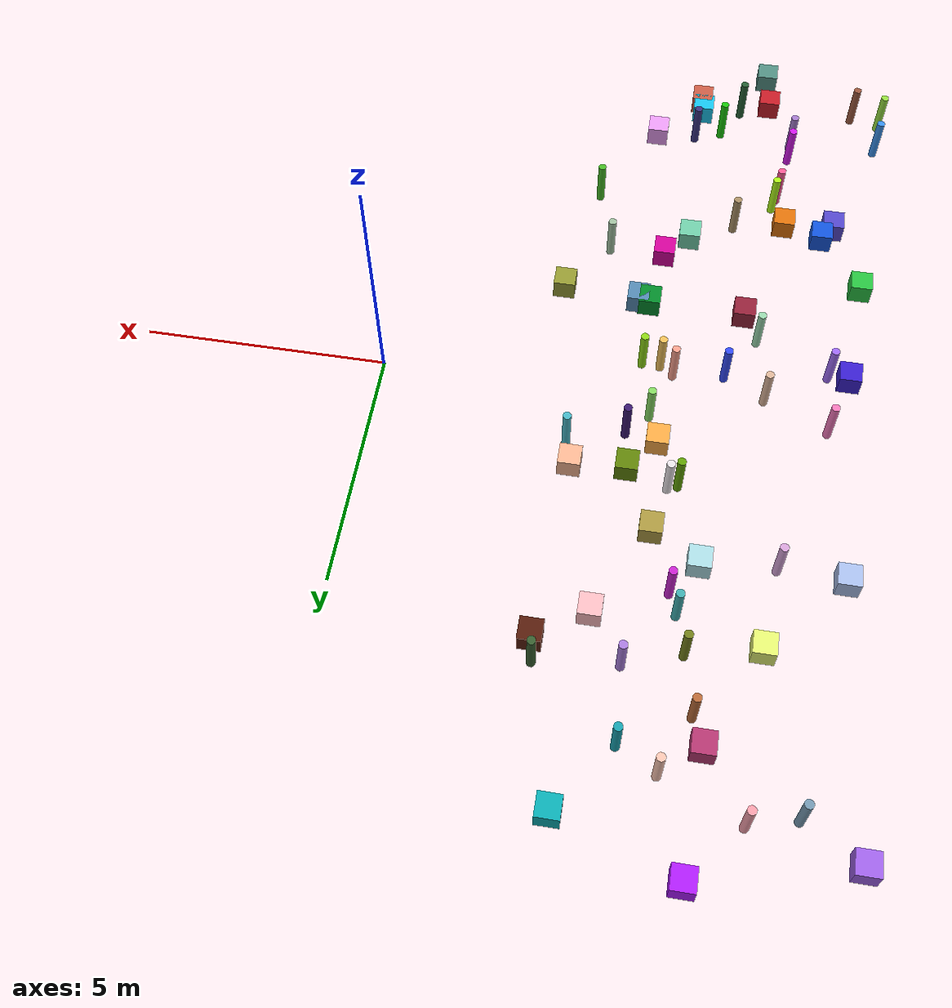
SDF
<sdf version="1.7">
 <world name="warehouse">
  <model name="ground_plane">
   <static>true</static>
   <link name="link">
    <collision name="collision">
     <geometry><plane><normal>0.0 0.0 1</normal><size>1 1</size></plane></geometry>
    </collision>
   </link>
  </model>
  <model name="unit_box_3">
   <static>true</static>
   <pose>-4.87 -7.57 0 0 0 0</pose>
   <link name="link">
    <collision name="collision">
     <geometry><box><size>0.450000 0.450000 0.450000</size></box></geometry>
    </collision>
    <visual name="visual">
     <geometry><box><size>0.450000 0.450000 0.450000</size></box></geometry>
     <material>
      <ambient>0.9026699777784415 0.6019357875675326 0.936818170479005 1</ambient>
      <diffuse>0.9026699777784415 0.6019357875675326 0.936818170479005 1</diffuse>
      <script><uri>file://media/materials/scripts/gazebo.material</uri><name>Gazebo/RandomColor3</name></script>
     </material>
    </visual>
   </link>
  </model>
  <model name="unit_box_5">
   <static>true</static>
   <pose>-9.95 8.63 0 0 0 0</pose>
   <link name="link">
    <collision name="collision">
     <geometry><box><size>0.450000 0.450000 0.450000</size></box></geometry>
    </collision>
    <visual name="visual">
     <geometry><box><size>0.450000 0.450000 0.450000</size></box></geometry>
     <material>
      <ambient>0.6154407336690317 0.37871564435809457 0.8966991050255034 1</ambient>
      <diffuse>0.6154407336690317 0.37871564435809457 0.8966991050255034 1</diffuse>
      <script><uri>file://media/materials/scripts/gazebo.material</uri><name>Gazebo/RandomColor5</name></script>
     </material>
    </visual>
   </link>
  </model>
  <model name="unit_cylinder_6">
   <static>true</static>
   <pose>-5.66 7.11 0 0 0 0</pose>
   <link name="link">
    <collision name="collision">
     <geometry><cylinder><radius>0.085000</radius><length>1.000000</length></cylinder></geometry>
    </collision>
    <visual name="visual">
     <geometry><cylinder><radius>0.085000</radius><length>1.000000</length></cylinder></geometry>
     <material>
      <ambient>0.08741391046455294 0.6259474203483671 0.6802748635079271 1</ambient>
      <diffuse>0.08741391046455294 0.6259474203483671 0.6802748635079271 1</diffuse>
      <script><uri>file://media/materials/scripts/gazebo.material</uri><name>Gazebo/RandomColor6</name></script>
     </material>
    </visual>
   </link>
  </model>
  <model name="unit_cylinder_9">
   <static>true</static>
   <pose>-7.95 -7.96 0 0 0 0</pose>
   <link name="link">
    <collision name="collision">
     <geometry><cylinder><radius>0.085000</radius><length>1.000000</length></cylinder></geometry>
    </collision>
    <visual name="visual">
     <geometry><cylinder><radius>0.085000</radius><length>1.000000</length></cylinder></geometry>
     <material>
      <ambient>0.6398860359785785 0.4799973726306034 0.7931210935479871 1</ambient>
      <diffuse>0.6398860359785785 0.4799973726306034 0.7931210935479871 1</diffuse>
      <script><uri>file://media/materials/scripts/gazebo.material</uri><name>Gazebo/RandomColor9</name></script>
     </material>
    </visual>
   </link>
  </model>
  <model name="unit_cylinder_10">
   <static>true</static>
   <pose>-6.33 -8.14 0 0 0 0</pose>
   <link name="link">
    <collision name="collision">
     <geometry><cylinder><radius>0.085000</radius><length>1.000000</length></cylinder></geometry>
    </collision>
    <visual name="visual">
     <geometry><cylinder><radius>0.085000</radius><length>1.000000</length></cylinder></geometry>
     <material>
      <ambient>0.09806367104197622 0.7730669275351795 0.04683629350049412 1</ambient>
      <diffuse>0.09806367104197622 0.7730669275351795 0.04683629350049412 1</diffuse>
      <script><uri>file://media/materials/scripts/gazebo.material</uri><name>Gazebo/RandomColor10</name></script>
     </material>
    </visual>
   </link>
  </model>
  <model name="unit_box_11">
   <static>true</static>
   <pose>-9.44 -1.17 0 0 0 0</pose>
   <link name="link">
    <collision name="collision">
     <geometry><box><size>0.450000 0.450000 0.450000</size></box></geometry>
    </collision>
    <visual name="visual">
     <geometry><box><size>0.450000 0.450000 0.450000</size></box></geometry>
     <material>
      <ambient>0.2187403771791414 0.11308076702255188 0.7992289625326177 1</ambient>
      <diffuse>0.2187403771791414 0.11308076702255188 0.7992289625326177 1</diffuse>
      <script><uri>file://media/materials/scripts/gazebo.material</uri><name>Gazebo/RandomColor11</name></script>
     </material>
    </visual>
   </link>
  </model>
  <model name="unit_cylinder_11">
   <static>true</static>
   <pose>-6.04 1.77 0 0 0 0</pose>
   <link name="link">
    <collision name="collision">
     <geometry><cylinder><radius>0.085000</radius><length>1.000000</length></cylinder></geometry>
    </collision>
    <visual name="visual">
     <geometry><cylinder><radius>0.085000</radius><length>1.000000</length></cylinder></geometry>
     <material>
      <ambient>0.9034382308019122 0.878446810579239 0.8954639350832497 1</ambient>
      <diffuse>0.9034382308019122 0.878446810579239 0.8954639350832497 1</diffuse>
      <script><uri>file://media/materials/scripts/gazebo.material</uri><name>Gazebo/RandomColor11</name></script>
     </material>
    </visual>
   </link>
  </model>
  <model name="unit_box_12">
   <static>true</static>
   <pose>-6.78 3.5 0 0 0 0</pose>
   <link name="link">
    <collision name="collision">
     <geometry><box><size>0.450000 0.450000 0.450000</size></box></geometry>
    </collision>
    <visual name="visual">
     <geometry><box><size>0.450000 0.450000 0.450000</size></box></geometry>
     <material>
      <ambient>0.6623910014228391 0.8483054760047987 0.8784508396129014 1</ambient>
      <diffuse>0.6623910014228391 0.8483054760047987 0.8784508396129014 1</diffuse>
      <script><uri>file://media/materials/scripts/gazebo.material</uri><name>Gazebo/RandomColor12</name></script>
     </material>
    </visual>
   </link>
  </model>
  <model name="unit_box_13">
   <static>true</static>
   <pose>-5.85 -8.45 0 0 0 0</pose>
   <link name="link">
    <collision name="collision">
     <geometry><box><size>0.450000 0.450000 0.450000</size></box></geometry>
    </collision>
    <visual name="visual">
     <geometry><box><size>0.450000 0.450000 0.450000</size></box></geometry>
     <material>
      <ambient>0.0886331011918422 0.7603424364719541 0.9202413364235801 1</ambient>
      <diffuse>0.0886331011918422 0.7603424364719541 0.9202413364235801 1</diffuse>
      <script><uri>file://media/materials/scripts/gazebo.material</uri><name>Gazebo/RandomColor13</name></script>
     </material>
    </visual>
   </link>
  </model>
  <model name="unit_box_16">
   <static>true</static>
   <pose>-7.37 -8.85 0 0 0 0</pose>
   <link name="link">
    <collision name="collision">
     <geometry><box><size>0.450000 0.450000 0.450000</size></box></geometry>
    </collision>
    <visual name="visual">
     <geometry><box><size>0.450000 0.450000 0.450000</size></box></geometry>
     <material>
      <ambient>0.7658787853236971 0.10682762159563586 0.15104276840093267 1</ambient>
      <diffuse>0.7658787853236971 0.10682762159563586 0.15104276840093267 1</diffuse>
      <script><uri>file://media/materials/scripts/gazebo.material</uri><name>Gazebo/RandomColor16</name></script>
     </material>
    </visual>
   </link>
  </model>
  <model name="unit_cylinder_20">
   <static>true</static>
   <pose>-7.93 -7.52 0 0 0 0</pose>
   <link name="link">
    <collision name="collision">
     <geometry><cylinder><radius>0.085000</radius><length>1.000000</length></cylinder></geometry>
    </collision>
    <visual name="visual">
     <geometry><cylinder><radius>0.085000</radius><length>1.000000</length></cylinder></geometry>
     <material>
      <ambient>0.8195183544858631 0.08890003333785146 0.9104346134078853 1</ambient>
      <diffuse>0.8195183544858631 0.08890003333785146 0.9104346134078853 1</diffuse>
      <script><uri>file://media/materials/scripts/gazebo.material</uri><name>Gazebo/RandomColor20</name></script>
     </material>
    </visual>
   </link>
  </model>
  <model name="unit_cylinder_23">
   <static>true</static>
   <pose>-9.9 -8.09 0 0 0 0</pose>
   <link name="link">
    <collision name="collision">
     <geometry><cylinder><radius>0.085000</radius><length>1.000000</length></cylinder></geometry>
    </collision>
    <visual name="visual">
     <geometry><cylinder><radius>0.085000</radius><length>1.000000</length></cylinder></geometry>
     <material>
      <ambient>0.22288324703453943 0.5596985518016837 0.9148220679438888 1</ambient>
      <diffuse>0.22288324703453943 0.5596985518016837 0.9148220679438888 1</diffuse>
      <script><uri>file://media/materials/scripts/gazebo.material</uri><name>Gazebo/RandomColor23</name></script>
     </material>
    </visual>
   </link>
  </model>
  <model name="unit_cylinder_24">
   <static>true</static>
   <pose>-7.74 -6.24 0 0 0 0</pose>
   <link name="link">
    <collision name="collision">
     <geometry><cylinder><radius>0.085000</radius><length>1.000000</length></cylinder></geometry>
    </collision>
    <visual name="visual">
     <geometry><cylinder><radius>0.085000</radius><length>1.000000</length></cylinder></geometry>
     <material>
      <ambient>0.9992332628684522 0.3465863657276286 0.5757859994032216 1</ambient>
      <diffuse>0.9992332628684522 0.3465863657276286 0.5757859994032216 1</diffuse>
      <script><uri>file://media/materials/scripts/gazebo.material</uri><name>Gazebo/RandomColor24</name></script>
     </material>
    </visual>
   </link>
  </model>
  <model name="unit_box_26">
   <static>true</static>
   <pose>-5.21 -2.52 0 0 0 0</pose>
   <link name="link">
    <collision name="collision">
     <geometry><box><size>0.450000 0.450000 0.450000</size></box></geometry>
    </collision>
    <visual name="visual">
     <geometry><box><size>0.450000 0.450000 0.450000</size></box></geometry>
     <material>
      <ambient>0.00601164439210089 0.5343776815972205 0.16163671621939035 1</ambient>
      <diffuse>0.00601164439210089 0.5343776815972205 0.16163671621939035 1</diffuse>
      <script><uri>file://media/materials/scripts/gazebo.material</uri><name>Gazebo/RandomColor26</name></script>
     </material>
    </visual>
   </link>
  </model>
  <model name="unit_cylinder_28">
   <static>true</static>
   <pose>-7.65 -5.95 0 0 0 0</pose>
   <link name="link">
    <collision name="collision">
     <geometry><cylinder><radius>0.085000</radius><length>1.000000</length></cylinder></geometry>
    </collision>
    <visual name="visual">
     <geometry><cylinder><radius>0.085000</radius><length>1.000000</length></cylinder></geometry>
     <material>
      <ambient>0.6766452723859394 0.9640420015916392 0.0958699209195274 1</ambient>
      <diffuse>0.6766452723859394 0.9640420015916392 0.0958699209195274 1</diffuse>
      <script><uri>file://media/materials/scripts/gazebo.material</uri><name>Gazebo/RandomColor28</name></script>
     </material>
    </visual>
   </link>
  </model>
  <model name="unit_box_33">
   <static>true</static>
   <pose>-4.96 -2.56 0 0 0 0</pose>
   <link name="link">
    <collision name="collision">
     <geometry><box><size>0.450000 0.450000 0.450000</size></box></geometry>
    </collision>
    <visual name="visual">
     <geometry><box><size>0.450000 0.450000 0.450000</size></box></geometry>
     <material>
      <ambient>0.326106500646025 0.5329978941385226 0.6894345649236161 1</ambient>
      <diffuse>0.326106500646025 0.5329978941385226 0.6894345649236161 1</diffuse>
      <script><uri>file://media/materials/scripts/gazebo.material</uri><name>Gazebo/RandomColor33</name></script>
     </material>
    </visual>
   </link>
  </model>
  <model name="unit_box_34">
   <static>true</static>
   <pose>-7.15 7.03 0 0 0 0</pose>
   <link name="link">
    <collision name="collision">
     <geometry><box><size>0.450000 0.450000 0.450000</size></box></geometry>
    </collision>
    <visual name="visual">
     <geometry><box><size>0.450000 0.450000 0.450000</size></box></geometry>
     <material>
      <ambient>0.6986888728593675 0.20795017847332886 0.4335318002757278 1</ambient>
      <diffuse>0.6986888728593675 0.20795017847332886 0.4335318002757278 1</diffuse>
      <script><uri>file://media/materials/scripts/gazebo.material</uri><name>Gazebo/RandomColor34</name></script>
     </material>
    </visual>
   </link>
  </model>
  <model name="unit_cylinder_34">
   <static>true</static>
   <pose>-3.92 1.0 0 0 0 0</pose>
   <link name="link">
    <collision name="collision">
     <geometry><cylinder><radius>0.085000</radius><length>1.000000</length></cylinder></geometry>
    </collision>
    <visual name="visual">
     <geometry><cylinder><radius>0.085000</radius><length>1.000000</length></cylinder></geometry>
     <material>
      <ambient>0.269620842693272 0.706274857367947 0.7644193684573464 1</ambient>
      <diffuse>0.269620842693272 0.706274857367947 0.7644193684573464 1</diffuse>
      <script><uri>file://media/materials/scripts/gazebo.material</uri><name>Gazebo/RandomColor34</name></script>
     </material>
    </visual>
   </link>
  </model>
  <model name="unit_box_36">
   <static>true</static>
   <pose>-5.2 1.62 0 0 0 0</pose>
   <link name="link">
    <collision name="collision">
     <geometry><box><size>0.450000 0.450000 0.450000</size></box></geometry>
    </collision>
    <visual name="visual">
     <geometry><box><size>0.450000 0.450000 0.450000</size></box></geometry>
     <material>
      <ambient>0.37287438703562537 0.5092205105875308 0.03384371920095841 1</ambient>
      <diffuse>0.37287438703562537 0.5092205105875308 0.03384371920095841 1</diffuse>
      <script><uri>file://media/materials/scripts/gazebo.material</uri><name>Gazebo/RandomColor36</name></script>
     </material>
    </visual>
   </link>
  </model>
  <model name="unit_box_37">
   <static>true</static>
   <pose>-5.38 -3.92 0 0 0 0</pose>
   <link name="link">
    <collision name="collision">
     <geometry><box><size>0.450000 0.450000 0.450000</size></box></geometry>
    </collision>
    <visual name="visual">
     <geometry><box><size>0.450000 0.450000 0.450000</size></box></geometry>
     <material>
      <ambient>0.8139348429441264 0.001635811516788821 0.5948767725771975 1</ambient>
      <diffuse>0.8139348429441264 0.001635811516788821 0.5948767725771975 1</diffuse>
      <script><uri>file://media/materials/scripts/gazebo.material</uri><name>Gazebo/RandomColor37</name></script>
     </material>
    </visual>
   </link>
  </model>
  <model name="unit_cylinder_37">
   <static>true</static>
   <pose>-6.3 4.03 0 0 0 0</pose>
   <link name="link">
    <collision name="collision">
     <geometry><cylinder><radius>0.085000</radius><length>1.000000</length></cylinder></geometry>
    </collision>
    <visual name="visual">
     <geometry><cylinder><radius>0.085000</radius><length>1.000000</length></cylinder></geometry>
     <material>
      <ambient>0.7805563339340792 0.13410406217622506 0.8051669679016923 1</ambient>
      <diffuse>0.7805563339340792 0.13410406217622506 0.8051669679016923 1</diffuse>
      <script><uri>file://media/materials/scripts/gazebo.material</uri><name>Gazebo/RandomColor37</name></script>
     </material>
    </visual>
   </link>
  </model>
  <model name="unit_cylinder_38">
   <static>true</static>
   <pose>-6.24 1.69 0 0 0 0</pose>
   <link name="link">
    <collision name="collision">
     <geometry><cylinder><radius>0.085000</radius><length>1.000000</length></cylinder></geometry>
    </collision>
    <visual name="visual">
     <geometry><cylinder><radius>0.085000</radius><length>1.000000</length></cylinder></geometry>
     <material>
      <ambient>0.3748070539456215 0.6224854280879355 0.01436773300809624 1</ambient>
      <diffuse>0.3748070539456215 0.6224854280879355 0.01436773300809624 1</diffuse>
      <script><uri>file://media/materials/scripts/gazebo.material</uri><name>Gazebo/RandomColor38</name></script>
     </material>
    </visual>
   </link>
  </model>
  <model name="unit_box_42">
   <static>true</static>
   <pose>-7.27 -9.73 0 0 0 0</pose>
   <link name="link">
    <collision name="collision">
     <geometry><box><size>0.450000 0.450000 0.450000</size></box></geometry>
    </collision>
    <visual name="visual">
     <geometry><box><size>0.450000 0.450000 0.450000</size></box></geometry>
     <material>
      <ambient>0.31663200090131893 0.5546355641815988 0.5038628764293686 1</ambient>
      <diffuse>0.31663200090131893 0.5546355641815988 0.5038628764293686 1</diffuse>
      <script><uri>file://media/materials/scripts/gazebo.material</uri><name>Gazebo/RandomColor42</name></script>
     </material>
    </visual>
   </link>
  </model>
  <model name="unit_box_45">
   <static>true</static>
   <pose>-7.01 9.35 0 0 0 0</pose>
   <link name="link">
    <collision name="collision">
     <geometry><box><size>0.450000 0.450000 0.450000</size></box></geometry>
    </collision>
    <visual name="visual">
     <geometry><box><size>0.450000 0.450000 0.450000</size></box></geometry>
     <material>
      <ambient>0.6735488026743477 0.10147242827671532 0.9982250567879276 1</ambient>
      <diffuse>0.6735488026743477 0.10147242827671532 0.9982250567879276 1</diffuse>
      <script><uri>file://media/materials/scripts/gazebo.material</uri><name>Gazebo/RandomColor45</name></script>
     </material>
    </visual>
   </link>
  </model>
  <model name="unit_cylinder_48">
   <static>true</static>
   <pose>-5.74 -7.9 0 0 0 0</pose>
   <link name="link">
    <collision name="collision">
     <geometry><cylinder><radius>0.085000</radius><length>1.000000</length></cylinder></geometry>
    </collision>
    <visual name="visual">
     <geometry><cylinder><radius>0.085000</radius><length>1.000000</length></cylinder></geometry>
     <material>
      <ambient>0.21931232377960963 0.19337690902812554 0.49578964546594884 1</ambient>
      <diffuse>0.21931232377960963 0.19337690902812554 0.49578964546594884 1</diffuse>
      <script><uri>file://media/materials/scripts/gazebo.material</uri><name>Gazebo/RandomColor48</name></script>
     </material>
    </visual>
   </link>
  </model>
  <model name="unit_box_49">
   <static>true</static>
   <pose>-3.89 5.45 0 0 0 0</pose>
   <link name="link">
    <collision name="collision">
     <geometry><box><size>0.450000 0.450000 0.450000</size></box></geometry>
    </collision>
    <visual name="visual">
     <geometry><box><size>0.450000 0.450000 0.450000</size></box></geometry>
     <material>
      <ambient>0.33521410998227386 0.10873990981384585 0.04758110683789307 1</ambient>
      <diffuse>0.33521410998227386 0.10873990981384585 0.04758110683789307 1</diffuse>
      <script><uri>file://media/materials/scripts/gazebo.material</uri><name>Gazebo/RandomColor49</name></script>
     </material>
    </visual>
   </link>
  </model>
  <model name="unit_cylinder_49">
   <static>true</static>
   <pose>-6.94 6.38 0 0 0 0</pose>
   <link name="link">
    <collision name="collision">
     <geometry><cylinder><radius>0.085000</radius><length>1.000000</length></cylinder></geometry>
    </collision>
    <visual name="visual">
     <geometry><cylinder><radius>0.085000</radius><length>1.000000</length></cylinder></geometry>
     <material>
      <ambient>0.7130849779217162 0.40718770368642243 0.2155447154424971 1</ambient>
      <diffuse>0.7130849779217162 0.40718770368642243 0.2155447154424971 1</diffuse>
      <script><uri>file://media/materials/scripts/gazebo.material</uri><name>Gazebo/RandomColor49</name></script>
     </material>
    </visual>
   </link>
  </model>
  <model name="unit_cylinder_50">
   <static>true</static>
   <pose>-5.51 0.14 0 0 0 0</pose>
   <link name="link">
    <collision name="collision">
     <geometry><cylinder><radius>0.085000</radius><length>1.000000</length></cylinder></geometry>
    </collision>
    <visual name="visual">
     <geometry><cylinder><radius>0.085000</radius><length>1.000000</length></cylinder></geometry>
     <material>
      <ambient>0.5177019881773336 0.8449414096123053 0.37672220213586616 1</ambient>
      <diffuse>0.5177019881773336 0.8449414096123053 0.37672220213586616 1</diffuse>
      <script><uri>file://media/materials/scripts/gazebo.material</uri><name>Gazebo/RandomColor50</name></script>
     </material>
    </visual>
   </link>
  </model>
  <model name="unit_box_52">
   <static>true</static>
   <pose>-5.73 0.93 0 0 0 0</pose>
   <link name="link">
    <collision name="collision">
     <geometry><box><size>0.450000 0.450000 0.450000</size></box></geometry>
    </collision>
    <visual name="visual">
     <geometry><box><size>0.450000 0.450000 0.450000</size></box></geometry>
     <material>
      <ambient>0.9689671189850713 0.6561431151539601 0.2690727088711401 1</ambient>
      <diffuse>0.9689671189850713 0.6561431151539601 0.2690727088711401 1</diffuse>
      <script><uri>file://media/materials/scripts/gazebo.material</uri><name>Gazebo/RandomColor52</name></script>
     </material>
    </visual>
   </link>
  </model>
  <model name="unit_box_53">
   <static>true</static>
   <pose>-5.8 -8.76 0 0 0 0</pose>
   <link name="link">
    <collision name="collision">
     <geometry><box><size>0.450000 0.450000 0.450000</size></box></geometry>
    </collision>
    <visual name="visual">
     <geometry><box><size>0.450000 0.450000 0.450000</size></box></geometry>
     <material>
      <ambient>0.777961978839884 0.3579091285099002 0.27121493670297714 1</ambient>
      <diffuse>0.777961978839884 0.3579091285099002 0.27121493670297714 1</diffuse>
      <script><uri>file://media/materials/scripts/gazebo.material</uri><name>Gazebo/RandomColor53</name></script>
     </material>
    </visual>
   </link>
  </model>
  <model name="unit_cylinder_53">
   <static>true</static>
   <pose>-6.94 -1.08 0 0 0 0</pose>
   <link name="link">
    <collision name="collision">
     <geometry><cylinder><radius>0.085000</radius><length>1.000000</length></cylinder></geometry>
    </collision>
    <visual name="visual">
     <geometry><cylinder><radius>0.085000</radius><length>1.000000</length></cylinder></geometry>
     <material>
      <ambient>0.1960993909560914 0.28753677306937386 0.9636462439622814 1</ambient>
      <diffuse>0.1960993909560914 0.28753677306937386 0.9636462439622814 1</diffuse>
      <script><uri>file://media/materials/scripts/gazebo.material</uri><name>Gazebo/RandomColor53</name></script>
     </material>
    </visual>
   </link>
  </model>
  <model name="unit_cylinder_54">
   <static>true</static>
   <pose>-3.77 -5.72 0 0 0 0</pose>
   <link name="link">
    <collision name="collision">
     <geometry><cylinder><radius>0.085000</radius><length>1.000000</length></cylinder></geometry>
    </collision>
    <visual name="visual">
     <geometry><cylinder><radius>0.085000</radius><length>1.000000</length></cylinder></geometry>
     <material>
      <ambient>0.26869386374819404 0.7094100861770662 0.13994505685964675 1</ambient>
      <diffuse>0.26869386374819404 0.7094100861770662 0.13994505685964675 1</diffuse>
      <script><uri>file://media/materials/scripts/gazebo.material</uri><name>Gazebo/RandomColor54</name></script>
     </material>
    </visual>
   </link>
  </model>
  <model name="unit_box_56">
   <static>true</static>
   <pose>-8.73 -4.9 0 0 0 0</pose>
   <link name="link">
    <collision name="collision">
     <geometry><box><size>0.450000 0.450000 0.450000</size></box></geometry>
    </collision>
    <visual name="visual">
     <geometry><box><size>0.450000 0.450000 0.450000</size></box></geometry>
     <material>
      <ambient>0.06805233192770055 0.32630263968583473 0.8522043699057573 1</ambient>
      <diffuse>0.06805233192770055 0.32630263968583473 0.8522043699057573 1</diffuse>
      <script><uri>file://media/materials/scripts/gazebo.material</uri><name>Gazebo/RandomColor56</name></script>
     </material>
    </visual>
   </link>
  </model>
  <model name="unit_cylinder_56">
   <static>true</static>
   <pose>-6.83 -5.22 0 0 0 0</pose>
   <link name="link">
    <collision name="collision">
     <geometry><cylinder><radius>0.085000</radius><length>1.000000</length></cylinder></geometry>
    </collision>
    <visual name="visual">
     <geometry><cylinder><radius>0.085000</radius><length>1.000000</length></cylinder></geometry>
     <material>
      <ambient>0.6554423567743826 0.5536112318123287 0.38994564053398373 1</ambient>
      <diffuse>0.6554423567743826 0.5536112318123287 0.38994564053398373 1</diffuse>
      <script><uri>file://media/materials/scripts/gazebo.material</uri><name>Gazebo/RandomColor56</name></script>
     </material>
    </visual>
   </link>
  </model>
  <model name="unit_box_57">
   <static>true</static>
   <pose>-8.07 5.04 0 0 0 0</pose>
   <link name="link">
    <collision name="collision">
     <geometry><box><size>0.450000 0.450000 0.450000</size></box></geometry>
    </collision>
    <visual name="visual">
     <geometry><box><size>0.450000 0.450000 0.450000</size></box></geometry>
     <material>
      <ambient>0.8845237819517255 0.9424275740873996 0.4440529709724652 1</ambient>
      <diffuse>0.8845237819517255 0.9424275740873996 0.4440529709724652 1</diffuse>
      <script><uri>file://media/materials/scripts/gazebo.material</uri><name>Gazebo/RandomColor57</name></script>
     </material>
    </visual>
   </link>
  </model>
  <model name="unit_cylinder_57">
   <static>true</static>
   <pose>-5.08 0.62 0 0 0 0</pose>
   <link name="link">
    <collision name="collision">
     <geometry><cylinder><radius>0.085000</radius><length>1.000000</length></cylinder></geometry>
    </collision>
    <visual name="visual">
     <geometry><cylinder><radius>0.085000</radius><length>1.000000</length></cylinder></geometry>
     <material>
      <ambient>0.22190710804002822 0.08835759440582514 0.4262751538315508 1</ambient>
      <diffuse>0.22190710804002822 0.08835759440582514 0.4262751538315508 1</diffuse>
      <script><uri>file://media/materials/scripts/gazebo.material</uri><name>Gazebo/RandomColor57</name></script>
     </material>
    </visual>
   </link>
  </model>
  <model name="unit_cylinder_59">
   <static>true</static>
   <pose>-7.79 -0.62 0 0 0 0</pose>
   <link name="link">
    <collision name="collision">
     <geometry><cylinder><radius>0.085000</radius><length>1.000000</length></cylinder></geometry>
    </collision>
    <visual name="visual">
     <geometry><cylinder><radius>0.085000</radius><length>1.000000</length></cylinder></geometry>
     <material>
      <ambient>0.8532384268794109 0.6991431494459375 0.5930702206331563 1</ambient>
      <diffuse>0.8532384268794109 0.6991431494459375 0.5930702206331563 1</diffuse>
      <script><uri>file://media/materials/scripts/gazebo.material</uri><name>Gazebo/RandomColor59</name></script>
     </material>
    </visual>
   </link>
  </model>
  <model name="unit_cylinder_66">
   <static>true</static>
   <pose>-6.47 4.46 0 0 0 0</pose>
   <link name="link">
    <collision name="collision">
     <geometry><cylinder><radius>0.085000</radius><length>1.000000</length></cylinder></geometry>
    </collision>
    <visual name="visual">
     <geometry><cylinder><radius>0.085000</radius><length>1.000000</length></cylinder></geometry>
     <material>
      <ambient>0.2470127041621366 0.6740111251235812 0.6845908005822664 1</ambient>
      <diffuse>0.2470127041621366 0.6740111251235812 0.6845908005822664 1</diffuse>
      <script><uri>file://media/materials/scripts/gazebo.material</uri><name>Gazebo/RandomColor66</name></script>
     </material>
    </visual>
   </link>
  </model>
  <model name="unit_box_67">
   <static>true</static>
   <pose>-8.97 -5.24 0 0 0 0</pose>
   <link name="link">
    <collision name="collision">
     <geometry><box><size>0.450000 0.450000 0.450000</size></box></geometry>
    </collision>
    <visual name="visual">
     <geometry><box><size>0.450000 0.450000 0.450000</size></box></geometry>
     <material>
      <ambient>0.3233096628293336 0.2726866741128663 0.7843967812868654 1</ambient>
      <diffuse>0.3233096628293336 0.2726866741128663 0.7843967812868654 1</diffuse>
      <script><uri>file://media/materials/scripts/gazebo.material</uri><name>Gazebo/RandomColor67</name></script>
     </material>
    </visual>
   </link>
  </model>
  <model name="unit_cylinder_67">
   <static>true</static>
   <pose>-9.98 -8.95 0 0 0 0</pose>
   <link name="link">
    <collision name="collision">
     <geometry><cylinder><radius>0.085000</radius><length>1.000000</length></cylinder></geometry>
    </collision>
    <visual name="visual">
     <geometry><cylinder><radius>0.085000</radius><length>1.000000</length></cylinder></geometry>
     <material>
      <ambient>0.5805952650516202 0.8568931400818329 0.24870345125786586 1</ambient>
      <diffuse>0.5805952650516202 0.8568931400818329 0.24870345125786586 1</diffuse>
      <script><uri>file://media/materials/scripts/gazebo.material</uri><name>Gazebo/RandomColor67</name></script>
     </material>
    </visual>
   </link>
  </model>
  <model name="unit_cylinder_69">
   <static>true</static>
   <pose>-5.22 -1.17 0 0 0 0</pose>
   <link name="link">
    <collision name="collision">
     <geometry><cylinder><radius>0.085000</radius><length>1.000000</length></cylinder></geometry>
    </collision>
    <visual name="visual">
     <geometry><cylinder><radius>0.085000</radius><length>1.000000</length></cylinder></geometry>
     <material>
      <ambient>0.5470878841145562 0.8270399761549486 0.08423313516421294 1</ambient>
      <diffuse>0.5470878841145562 0.8270399761549486 0.08423313516421294 1</diffuse>
      <script><uri>file://media/materials/scripts/gazebo.material</uri><name>Gazebo/RandomColor69</name></script>
     </material>
    </visual>
   </link>
  </model>
  <model name="unit_cylinder_71">
   <static>true</static>
   <pose>-9.07 -1.41 0 0 0 0</pose>
   <link name="link">
    <collision name="collision">
     <geometry><cylinder><radius>0.085000</radius><length>1.000000</length></cylinder></geometry>
    </collision>
    <visual name="visual">
     <geometry><cylinder><radius>0.085000</radius><length>1.000000</length></cylinder></geometry>
     <material>
      <ambient>0.6172003848349661 0.41520690210349387 0.9607214758920715 1</ambient>
      <diffuse>0.6172003848349661 0.41520690210349387 0.9607214758920715 1</diffuse>
      <script><uri>file://media/materials/scripts/gazebo.material</uri><name>Gazebo/RandomColor71</name></script>
     </material>
    </visual>
   </link>
  </model>
  <model name="unit_cylinder_73">
   <static>true</static>
   <pose>-7.99 8.17 0 0 0 0</pose>
   <link name="link">
    <collision name="collision">
     <geometry><cylinder><radius>0.085000</radius><length>1.000000</length></cylinder></geometry>
    </collision>
    <visual name="visual">
     <geometry><cylinder><radius>0.085000</radius><length>1.000000</length></cylinder></geometry>
     <material>
      <ambient>0.9459262896656819 0.6109963594583966 0.6586700322853896 1</ambient>
      <diffuse>0.9459262896656819 0.6109963594583966 0.6586700322853896 1</diffuse>
      <script><uri>file://media/materials/scripts/gazebo.material</uri><name>Gazebo/RandomColor73</name></script>
     </material>
    </visual>
   </link>
  </model>
  <model name="unit_cylinder_75">
   <static>true</static>
   <pose>-6.43 7.52 0 0 0 0</pose>
   <link name="link">
    <collision name="collision">
     <geometry><cylinder><radius>0.085000</radius><length>1.000000</length></cylinder></geometry>
    </collision>
    <visual name="visual">
     <geometry><cylinder><radius>0.085000</radius><length>1.000000</length></cylinder></geometry>
     <material>
      <ambient>0.9688597053904267 0.7578589419347131 0.6854211087457879 1</ambient>
      <diffuse>0.9688597053904267 0.7578589419347131 0.6854211087457879 1</diffuse>
      <script><uri>file://media/materials/scripts/gazebo.material</uri><name>Gazebo/RandomColor75</name></script>
     </material>
    </visual>
   </link>
  </model>
  <model name="unit_box_77">
   <static>true</static>
   <pose>-9.53 3.44 0 0 0 0</pose>
   <link name="link">
    <collision name="collision">
     <geometry><box><size>0.450000 0.450000 0.450000</size></box></geometry>
    </collision>
    <visual name="visual">
     <geometry><box><size>0.450000 0.450000 0.450000</size></box></geometry>
     <material>
      <ambient>0.6513043385060582 0.7369574669732332 0.9108452593849006 1</ambient>
      <diffuse>0.6513043385060582 0.7369574669732332 0.9108452593849006 1</diffuse>
      <script><uri>file://media/materials/scripts/gazebo.material</uri><name>Gazebo/RandomColor77</name></script>
     </material>
    </visual>
   </link>
  </model>
  <model name="unit_cylinder_78">
   <static>true</static>
   <pose>-6.74 -8.88 0 0 0 0</pose>
   <link name="link">
    <collision name="collision">
     <geometry><cylinder><radius>0.085000</radius><length>1.000000</length></cylinder></geometry>
    </collision>
    <visual name="visual">
     <geometry><cylinder><radius>0.085000</radius><length>1.000000</length></cylinder></geometry>
     <material>
      <ambient>0.14075161511203693 0.36744839131141194 0.1990025822747985 1</ambient>
      <diffuse>0.14075161511203693 0.36744839131141194 0.1990025822747985 1</diffuse>
      <script><uri>file://media/materials/scripts/gazebo.material</uri><name>Gazebo/RandomColor78</name></script>
     </material>
    </visual>
   </link>
  </model>
  <model name="unit_cylinder_79">
   <static>true</static>
   <pose>-6.69 5.23 0 0 0 0</pose>
   <link name="link">
    <collision name="collision">
     <geometry><cylinder><radius>0.085000</radius><length>1.000000</length></cylinder></geometry>
    </collision>
    <visual name="visual">
     <geometry><cylinder><radius>0.085000</radius><length>1.000000</length></cylinder></geometry>
     <material>
      <ambient>0.4456893727762622 0.4914422919702697 0.10221584961231112 1</ambient>
      <diffuse>0.4456893727762622 0.4914422919702697 0.10221584961231112 1</diffuse>
      <script><uri>file://media/materials/scripts/gazebo.material</uri><name>Gazebo/RandomColor79</name></script>
     </material>
    </visual>
   </link>
  </model>
  <model name="unit_box_80">
   <static>true</static>
   <pose>-5.88 -4.49 0 0 0 0</pose>
   <link name="link">
    <collision name="collision">
     <geometry><box><size>0.450000 0.450000 0.450000</size></box></geometry>
    </collision>
    <visual name="visual">
     <geometry><box><size>0.450000 0.450000 0.450000</size></box></geometry>
     <material>
      <ambient>0.42983686062580617 0.7865374993424344 0.6481768875524226 1</ambient>
      <diffuse>0.42983686062580617 0.7865374993424344 0.6481768875524226 1</diffuse>
      <script><uri>file://media/materials/scripts/gazebo.material</uri><name>Gazebo/RandomColor80</name></script>
     </material>
    </visual>
   </link>
  </model>
  <model name="unit_cylinder_80">
   <static>true</static>
   <pose>-5.6 -1.15 0 0 0 0</pose>
   <link name="link">
    <collision name="collision">
     <geometry><cylinder><radius>0.085000</radius><length>1.000000</length></cylinder></geometry>
    </collision>
    <visual name="visual">
     <geometry><cylinder><radius>0.085000</radius><length>1.000000</length></cylinder></geometry>
     <material>
      <ambient>0.9299282167805915 0.73813404866333 0.34084154363473274 1</ambient>
      <diffuse>0.9299282167805915 0.73813404866333 0.34084154363473274 1</diffuse>
      <script><uri>file://media/materials/scripts/gazebo.material</uri><name>Gazebo/RandomColor80</name></script>
     </material>
    </visual>
   </link>
  </model>
  <model name="unit_box_81">
   <static>true</static>
   <pose>-9.61 -3.6 0 0 0 0</pose>
   <link name="link">
    <collision name="collision">
     <geometry><box><size>0.450000 0.450000 0.450000</size></box></geometry>
    </collision>
    <visual name="visual">
     <geometry><box><size>0.450000 0.450000 0.450000</size></box></geometry>
     <material>
      <ambient>0.15721840434275347 0.7551959494040933 0.25285275361097814 1</ambient>
      <diffuse>0.15721840434275347 0.7551959494040933 0.25285275361097814 1</diffuse>
      <script><uri>file://media/materials/scripts/gazebo.material</uri><name>Gazebo/RandomColor81</name></script>
     </material>
    </visual>
   </link>
  </model>
  <model name="unit_cylinder_81">
   <static>true</static>
   <pose>-3.96 5.79 0 0 0 0</pose>
   <link name="link">
    <collision name="collision">
     <geometry><cylinder><radius>0.085000</radius><length>1.000000</length></cylinder></geometry>
    </collision>
    <visual name="visual">
     <geometry><cylinder><radius>0.085000</radius><length>1.000000</length></cylinder></geometry>
     <material>
      <ambient>0.2144754523026795 0.3661301829680821 0.18323225760846273 1</ambient>
      <diffuse>0.2144754523026795 0.3661301829680821 0.18323225760846273 1</diffuse>
      <script><uri>file://media/materials/scripts/gazebo.material</uri><name>Gazebo/RandomColor81</name></script>
     </material>
    </visual>
   </link>
  </model>
  <model name="unit_box_82">
   <static>true</static>
   <pose>-4.89 4.79 0 0 0 0</pose>
   <link name="link">
    <collision name="collision">
     <geometry><box><size>0.450000 0.450000 0.450000</size></box></geometry>
    </collision>
    <visual name="visual">
     <geometry><box><size>0.450000 0.450000 0.450000</size></box></geometry>
     <material>
      <ambient>0.9963435813007044 0.7276596220085548 0.7490499535063246 1</ambient>
      <diffuse>0.9963435813007044 0.7276596220085548 0.7490499535063246 1</diffuse>
      <script><uri>file://media/materials/scripts/gazebo.material</uri><name>Gazebo/RandomColor82</name></script>
     </material>
    </visual>
   </link>
  </model>
  <model name="unit_box_83">
   <static>true</static>
   <pose>-7.9 -5.16 0 0 0 0</pose>
   <link name="link">
    <collision name="collision">
     <geometry><box><size>0.450000 0.450000 0.450000</size></box></geometry>
    </collision>
    <visual name="visual">
     <geometry><box><size>0.450000 0.450000 0.450000</size></box></geometry>
     <material>
      <ambient>0.8719248086665411 0.4454881484455415 0.03825777463161106 1</ambient>
      <diffuse>0.8719248086665411 0.4454881484455415 0.03825777463161106 1</diffuse>
      <script><uri>file://media/materials/scripts/gazebo.material</uri><name>Gazebo/RandomColor83</name></script>
     </material>
    </visual>
   </link>
  </model>
  <model name="unit_cylinder_85">
   <static>true</static>
   <pose>-9.35 -9.1 0 0 0 0</pose>
   <link name="link">
    <collision name="collision">
     <geometry><cylinder><radius>0.085000</radius><length>1.000000</length></cylinder></geometry>
    </collision>
    <visual name="visual">
     <geometry><cylinder><radius>0.085000</radius><length>1.000000</length></cylinder></geometry>
     <material>
      <ambient>0.6004874937984485 0.33813862287941143 0.23926804077634634 1</ambient>
      <diffuse>0.6004874937984485 0.33813862287941143 0.23926804077634634 1</diffuse>
      <script><uri>file://media/materials/scripts/gazebo.material</uri><name>Gazebo/RandomColor85</name></script>
     </material>
    </visual>
   </link>
  </model>
  <model name="unit_cylinder_86">
   <static>true</static>
   <pose>-8.91 7.92 0 0 0 0</pose>
   <link name="link">
    <collision name="collision">
     <geometry><cylinder><radius>0.085000</radius><length>1.000000</length></cylinder></geometry>
    </collision>
    <visual name="visual">
     <geometry><cylinder><radius>0.085000</radius><length>1.000000</length></cylinder></geometry>
     <material>
      <ambient>0.4485686927088538 0.5856538665426989 0.6841295350985158 1</ambient>
      <diffuse>0.4485686927088538 0.5856538665426989 0.6841295350985158 1</diffuse>
      <script><uri>file://media/materials/scripts/gazebo.material</uri><name>Gazebo/RandomColor86</name></script>
     </material>
    </visual>
   </link>
  </model>
  <model name="unit_cylinder_87">
   <static>true</static>
   <pose>-9.11 -0.03 0 0 0 0</pose>
   <link name="link">
    <collision name="collision">
     <geometry><cylinder><radius>0.085000</radius><length>1.000000</length></cylinder></geometry>
    </collision>
    <visual name="visual">
     <geometry><cylinder><radius>0.085000</radius><length>1.000000</length></cylinder></geometry>
     <material>
      <ambient>0.9363239228437024 0.45998400024307484 0.7199533709269844 1</ambient>
      <diffuse>0.9363239228437024 0.45998400024307484 0.7199533709269844 1</diffuse>
      <script><uri>file://media/materials/scripts/gazebo.material</uri><name>Gazebo/RandomColor87</name></script>
     </material>
    </visual>
   </link>
  </model>
  <model name="unit_box_91">
   <static>true</static>
   <pose>-4.68 8.54 0 0 0 0</pose>
   <link name="link">
    <collision name="collision">
     <geometry><box><size>0.450000 0.450000 0.450000</size></box></geometry>
    </collision>
    <visual name="visual">
     <geometry><box><size>0.450000 0.450000 0.450000</size></box></geometry>
     <material>
      <ambient>0.03694561112324013 0.6699217023659122 0.6950928437952208 1</ambient>
      <diffuse>0.03694561112324013 0.6699217023659122 0.6950928437952208 1</diffuse>
      <script><uri>file://media/materials/scripts/gazebo.material</uri><name>Gazebo/RandomColor91</name></script>
     </material>
    </visual>
   </link>
  </model>
  <model name="unit_box_93">
   <static>true</static>
   <pose>-4.08 1.69 0 0 0 0</pose>
   <link name="link">
    <collision name="collision">
     <geometry><box><size>0.450000 0.450000 0.450000</size></box></geometry>
    </collision>
    <visual name="visual">
     <geometry><box><size>0.450000 0.450000 0.450000</size></box></geometry>
     <material>
      <ambient>0.9550315831314578 0.6998772623513185 0.5649872190067493 1</ambient>
      <diffuse>0.9550315831314578 0.6998772623513185 0.5649872190067493 1</diffuse>
      <script><uri>file://media/materials/scripts/gazebo.material</uri><name>Gazebo/RandomColor93</name></script>
     </material>
    </visual>
   </link>
  </model>
  <model name="unit_cylinder_93">
   <static>true</static>
   <pose>-5.88 -0.96 0 0 0 0</pose>
   <link name="link">
    <collision name="collision">
     <geometry><cylinder><radius>0.085000</radius><length>1.000000</length></cylinder></geometry>
    </collision>
    <visual name="visual">
     <geometry><cylinder><radius>0.085000</radius><length>1.000000</length></cylinder></geometry>
     <material>
      <ambient>0.9761447884191244 0.6180760816953019 0.5428630082337057 1</ambient>
      <diffuse>0.9761447884191244 0.6180760816953019 0.5428630082337057 1</diffuse>
      <script><uri>file://media/materials/scripts/gazebo.material</uri><name>Gazebo/RandomColor93</name></script>
     </material>
    </visual>
   </link>
  </model>
  <model name="unit_cylinder_94">
   <static>true</static>
   <pose>-5.57 5.61 0 0 0 0</pose>
   <link name="link">
    <collision name="collision">
     <geometry><cylinder><radius>0.085000</radius><length>1.000000</length></cylinder></geometry>
    </collision>
    <visual name="visual">
     <geometry><cylinder><radius>0.085000</radius><length>1.000000</length></cylinder></geometry>
     <material>
      <ambient>0.6550625165439448 0.48304526483440613 0.8567069135691423 1</ambient>
      <diffuse>0.6550625165439448 0.48304526483440613 0.8567069135691423 1</diffuse>
      <script><uri>file://media/materials/scripts/gazebo.material</uri><name>Gazebo/RandomColor94</name></script>
     </material>
    </visual>
   </link>
  </model>
  <model name="unit_box_96">
   <static>true</static>
   <pose>-7.21 -2.51 0 0 0 0</pose>
   <link name="link">
    <collision name="collision">
     <geometry><box><size>0.450000 0.450000 0.450000</size></box></geometry>
    </collision>
    <visual name="visual">
     <geometry><box><size>0.450000 0.450000 0.450000</size></box></geometry>
     <material>
      <ambient>0.5690551046843008 0.12716053408611128 0.22340712778627492 1</ambient>
      <diffuse>0.5690551046843008 0.12716053408611128 0.22340712778627492 1</diffuse>
      <script><uri>file://media/materials/scripts/gazebo.material</uri><name>Gazebo/RandomColor96</name></script>
     </material>
    </visual>
   </link>
  </model>
  <model name="unit_cylinder_96">
   <static>true</static>
   <pose>-4.19 -4.15 0 0 0 0</pose>
   <link name="link">
    <collision name="collision">
     <geometry><cylinder><radius>0.085000</radius><length>1.000000</length></cylinder></geometry>
    </collision>
    <visual name="visual">
     <geometry><cylinder><radius>0.085000</radius><length>1.000000</length></cylinder></geometry>
     <material>
      <ambient>0.6210029941227085 0.7424081391613494 0.6181059028133096 1</ambient>
      <diffuse>0.6210029941227085 0.7424081391613494 0.6181059028133096 1</diffuse>
      <script><uri>file://media/materials/scripts/gazebo.material</uri><name>Gazebo/RandomColor96</name></script>
     </material>
    </visual>
   </link>
  </model>
  <model name="unit_box_97">
   <static>true</static>
   <pose>-3.37 -2.71 0 0 0 0</pose>
   <link name="link">
    <collision name="collision">
     <geometry><box><size>0.450000 0.450000 0.450000</size></box></geometry>
    </collision>
    <visual name="visual">
     <geometry><box><size>0.450000 0.450000 0.450000</size></box></geometry>
     <material>
      <ambient>0.5773617782385593 0.595022838059977 0.19659265034295148 1</ambient>
      <diffuse>0.5773617782385593 0.595022838059977 0.19659265034295148 1</diffuse>
      <script><uri>file://media/materials/scripts/gazebo.material</uri><name>Gazebo/RandomColor97</name></script>
     </material>
    </visual>
   </link>
  </model>
  <model name="unit_cylinder_97">
   <static>true</static>
   <pose>-8.27 3.23 0 0 0 0</pose>
   <link name="link">
    <collision name="collision">
     <geometry><cylinder><radius>0.085000</radius><length>1.000000</length></cylinder></geometry>
    </collision>
    <visual name="visual">
     <geometry><cylinder><radius>0.085000</radius><length>1.000000</length></cylinder></geometry>
     <material>
      <ambient>0.8257130287319772 0.625287799946831 0.8361772973542931 1</ambient>
      <diffuse>0.8257130287319772 0.625287799946831 0.8361772973542931 1</diffuse>
      <script><uri>file://media/materials/scripts/gazebo.material</uri><name>Gazebo/RandomColor97</name></script>
     </material>
    </visual>
   </link>
  </model>
  <model name="unit_box_98">
   <static>true</static>
   <pose>-5.81 2.92 0 0 0 0</pose>
   <link name="link">
    <collision name="collision">
     <geometry><box><size>0.450000 0.450000 0.450000</size></box></geometry>
    </collision>
    <visual name="visual">
     <geometry><box><size>0.450000 0.450000 0.450000</size></box></geometry>
     <material>
      <ambient>0.6663099670625415 0.5922531545341918 0.2522599446660029 1</ambient>
      <diffuse>0.6663099670625415 0.5922531545341918 0.2522599446660029 1</diffuse>
      <script><uri>file://media/materials/scripts/gazebo.material</uri><name>Gazebo/RandomColor98</name></script>
     </material>
    </visual>
   </link>
  </model>
  <model name="unit_cylinder_99">
   <static>true</static>
   <pose>-7.55 -2.1 0 0 0 0</pose>
   <link name="link">
    <collision name="collision">
     <geometry><cylinder><radius>0.085000</radius><length>1.000000</length></cylinder></geometry>
    </collision>
    <visual name="visual">
     <geometry><cylinder><radius>0.085000</radius><length>1.000000</length></cylinder></geometry>
     <material>
      <ambient>0.592337352762642 0.8307767155431192 0.6706866370978652 1</ambient>
      <diffuse>0.592337352762642 0.8307767155431192 0.6706866370978652 1</diffuse>
      <script><uri>file://media/materials/scripts/gazebo.material</uri><name>Gazebo/RandomColor99</name></script>
     </material>
    </visual>
   </link>
  </model>
 </world>
</sdf>
